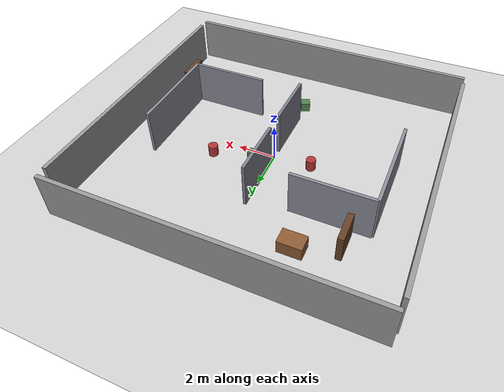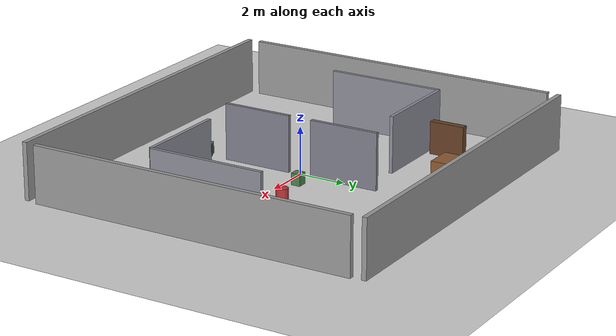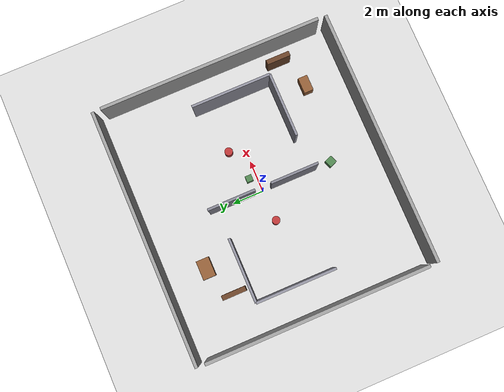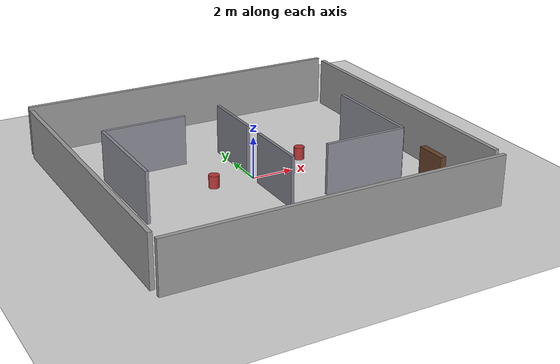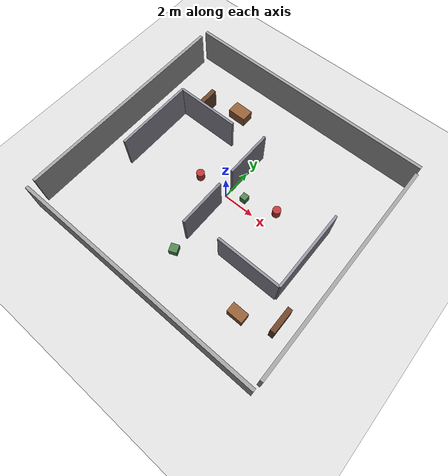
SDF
<?xml version="1.0"?>
<sdf version="1.9">
  <world name="mixed_complex">
    <gravity>0 0 -9.8</gravity>
    <plugin filename="ignition-gazebo-physics-system" name="ignition::gazebo::systems::Physics"/>
    <plugin filename="ignition-gazebo-scene-broadcaster-system" name="ignition::gazebo::systems::SceneBroadcaster"/>
    <plugin filename="ignition-gazebo-user-commands-system" name="ignition::gazebo::systems::UserCommands"/>
    <plugin filename="ignition-gazebo-sensors-system" name="ignition::gazebo::systems::Sensors">
      <render_engine>ogre2</render_engine>
    </plugin>

    <light name="sun" type="directional">
      <pose>0 0 10 0 0 0</pose>
      <visualize>false</visualize>
      <diffuse>0.8 0.8 0.8 1</diffuse>
      <direction>-0.5 0.1 -0.9</direction>
    </light>

    <model name="ground_plane">
      <static>true</static>
      <link name="link">
        <collision name="collision"><geometry><plane><normal>0 0 1</normal><size>24 24</size></plane></geometry></collision>
        <visual name="visual"><geometry><plane><normal>0 0 1</normal><size>24 24</size></plane></geometry><material><diffuse>0.82 0.82 0.82 1</diffuse></material></visual>
      </link>
    </model>

    <!-- 外墙 -->
    <model name="wall_n"><static>true</static><pose>0 7.5 1.2 0 0 0</pose><link name="link"><collision name="c"><geometry><box><size>16 0.2 2.4</size></box></geometry></collision><visual name="v"><geometry><box><size>16 0.2 2.4</size></box></geometry><material><diffuse>0.6 0.6 0.6 1</diffuse></material></visual></link></model>
    <model name="wall_s"><static>true</static><pose>0 -7.5 1.2 0 0 0</pose><link name="link"><collision name="c"><geometry><box><size>16 0.2 2.4</size></box></geometry></collision><visual name="v"><geometry><box><size>16 0.2 2.4</size></box></geometry><material><diffuse>0.6 0.6 0.6 1</diffuse></material></visual></link></model>
    <model name="wall_e"><static>true</static><pose>8 0 1.2 0 0 0</pose><link name="link"><collision name="c"><geometry><box><size>0.2 14 2.4</size></box></geometry></collision><visual name="v"><geometry><box><size>0.2 14 2.4</size></box></geometry><material><diffuse>0.6 0.6 0.6 1</diffuse></material></visual></link></model>
    <model name="wall_w"><static>true</static><pose>-8 0 1.2 0 0 0</pose><link name="link"><collision name="c"><geometry><box><size>0.2 14 2.4</size></box></geometry></collision><visual name="v"><geometry><box><size>0.2 14 2.4</size></box></geometry><material><diffuse>0.6 0.6 0.6 1</diffuse></material></visual></link></model>

    <!-- 房间 A (左上) - 墙壁 -->
    <model name="room_a_wall1"><static>true</static><pose>-4 3 1.2 0 0 0</pose><link name="link"><collision name="c"><geometry><box><size>4 0.15 2.4</size></box></geometry></collision><visual name="v"><geometry><box><size>4 0.15 2.4</size></box></geometry><material><diffuse>0.55 0.55 0.6 1</diffuse></material></visual></link></model>
    <model name="room_a_wall2"><static>true</static><pose>-6 0.5 1.2 0 0 0</pose><link name="link"><collision name="c"><geometry><box><size>0.15 5 2.4</size></box></geometry></collision><visual name="v"><geometry><box><size>0.15 5 2.4</size></box></geometry><material><diffuse>0.55 0.55 0.6 1</diffuse></material></visual></link></model>

    <!-- 房间 B (右下) - 墙壁 -->
    <model name="room_b_wall1"><static>true</static><pose>4 -3 1.2 0 0 0</pose><link name="link"><collision name="c"><geometry><box><size>4 0.15 2.4</size></box></geometry></collision><visual name="v"><geometry><box><size>4 0.15 2.4</size></box></geometry><material><diffuse>0.55 0.55 0.6 1</diffuse></material></visual></link></model>
    <model name="room_b_wall2"><static>true</static><pose>6 -0.5 1.2 0 0 0</pose><link name="link"><collision name="c"><geometry><box><size>0.15 5 2.4</size></box></geometry></collision><visual name="v"><geometry><box><size>0.15 5 2.4</size></box></geometry><material><diffuse>0.55 0.55 0.6 1</diffuse></material></visual></link></model>

    <!-- 走廊隔墙 -->
    <model name="corridor_wall1"><static>true</static><pose>0 2 1.2 0 0 0</pose><link name="link"><collision name="c"><geometry><box><size>0.15 3 2.4</size></box></geometry></collision><visual name="v"><geometry><box><size>0.15 3 2.4</size></box></geometry><material><diffuse>0.5 0.5 0.55 1</diffuse></material></visual></link></model>
    <model name="corridor_wall2"><static>true</static><pose>0 -2 1.2 0 0 0</pose><link name="link"><collision name="c"><geometry><box><size>0.15 3 2.4</size></box></geometry></collision><visual name="v"><geometry><box><size>0.15 3 2.4</size></box></geometry><material><diffuse>0.5 0.5 0.55 1</diffuse></material></visual></link></model>

    <!-- 家具 - 桌子 -->
    <model name="table1"><static>true</static><pose>-3 5 0.35 0 0 0</pose><link name="link"><collision name="c"><geometry><box><size>1.2 0.8 0.7</size></box></geometry></collision><visual name="v"><geometry><box><size>1.2 0.8 0.7</size></box></geometry><material><diffuse>0.55 0.35 0.2 1</diffuse></material></visual></link></model>
    <model name="table2"><static>true</static><pose>5 -5 0.35 0 0 0</pose><link name="link"><collision name="c"><geometry><box><size>1.0 0.6 0.7</size></box></geometry></collision><visual name="v"><geometry><box><size>1.0 0.6 0.7</size></box></geometry><material><diffuse>0.55 0.35 0.2 1</diffuse></material></visual></link></model>

    <!-- 家具 - 书架 -->
    <model name="shelf1"><static>true</static><pose>-5 4 0.7 0 0 0</pose><link name="link"><collision name="c"><geometry><box><size>0.3 1.5 1.4</size></box></geometry></collision><visual name="v"><geometry><box><size>0.3 1.5 1.4</size></box></geometry><material><diffuse>0.4 0.25 0.15 1</diffuse></material></visual></link></model>
    <model name="shelf2"><static>true</static><pose>7 -4 0.7 0 0 0</pose><link name="link"><collision name="c"><geometry><box><size>0.3 1.5 1.4</size></box></geometry></collision><visual name="v"><geometry><box><size>0.3 1.5 1.4</size></box></geometry><material><diffuse>0.4 0.25 0.15 1</diffuse></material></visual></link></model>

    <!-- 走廊中的障碍物 -->
    <model name="barrel1"><static>true</static><pose>-2 0 0.3 0 0 0</pose><link name="link"><collision name="c"><geometry><cylinder><radius>0.25</radius><length>0.6</length></cylinder></geometry></collision><visual name="v"><geometry><cylinder><radius>0.25</radius><length>0.6</length></cylinder></geometry><material><diffuse>0.7 0.2 0.2 1</diffuse></material></visual></link></model>
    <model name="barrel2"><static>true</static><pose>3 1 0.3 0 0 0</pose><link name="link"><collision name="c"><geometry><cylinder><radius>0.25</radius><length>0.6</length></cylinder></geometry></collision><visual name="v"><geometry><cylinder><radius>0.25</radius><length>0.6</length></cylinder></geometry><material><diffuse>0.7 0.2 0.2 1</diffuse></material></visual></link></model>
    <model name="crate1"><static>true</static><pose>0 -4.5 0.25 0 0 0.4</pose><link name="link"><collision name="c"><geometry><box><size>0.5 0.5 0.5</size></box></geometry></collision><visual name="v"><geometry><box><size>0.5 0.5 0.5</size></box></geometry><material><diffuse>0.3 0.5 0.3 1</diffuse></material></visual></link></model>
    <model name="crate2"><static>true</static><pose>1 0.5 0.25 0 0 0</pose><link name="link"><collision name="c"><geometry><box><size>0.4 0.4 0.5</size></box></geometry></collision><visual name="v"><geometry><box><size>0.4 0.4 0.5</size></box></geometry><material><diffuse>0.3 0.5 0.3 1</diffuse></material></visual></link></model>
  </world>
</sdf>
